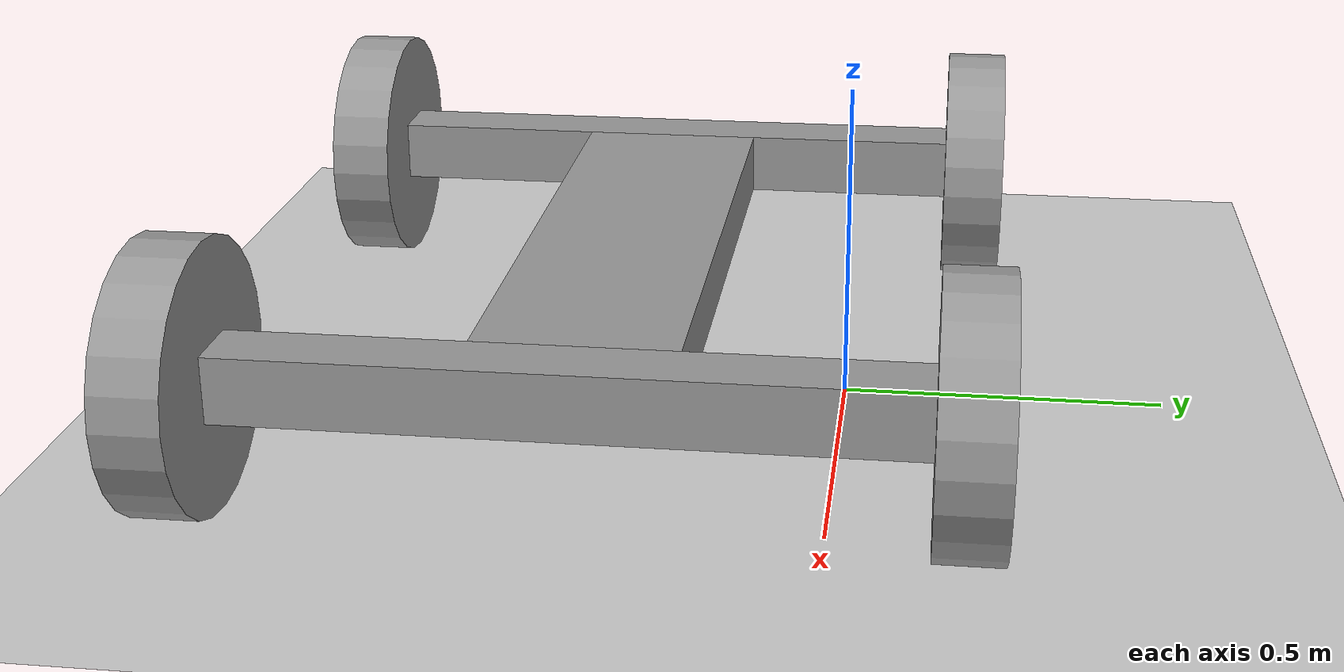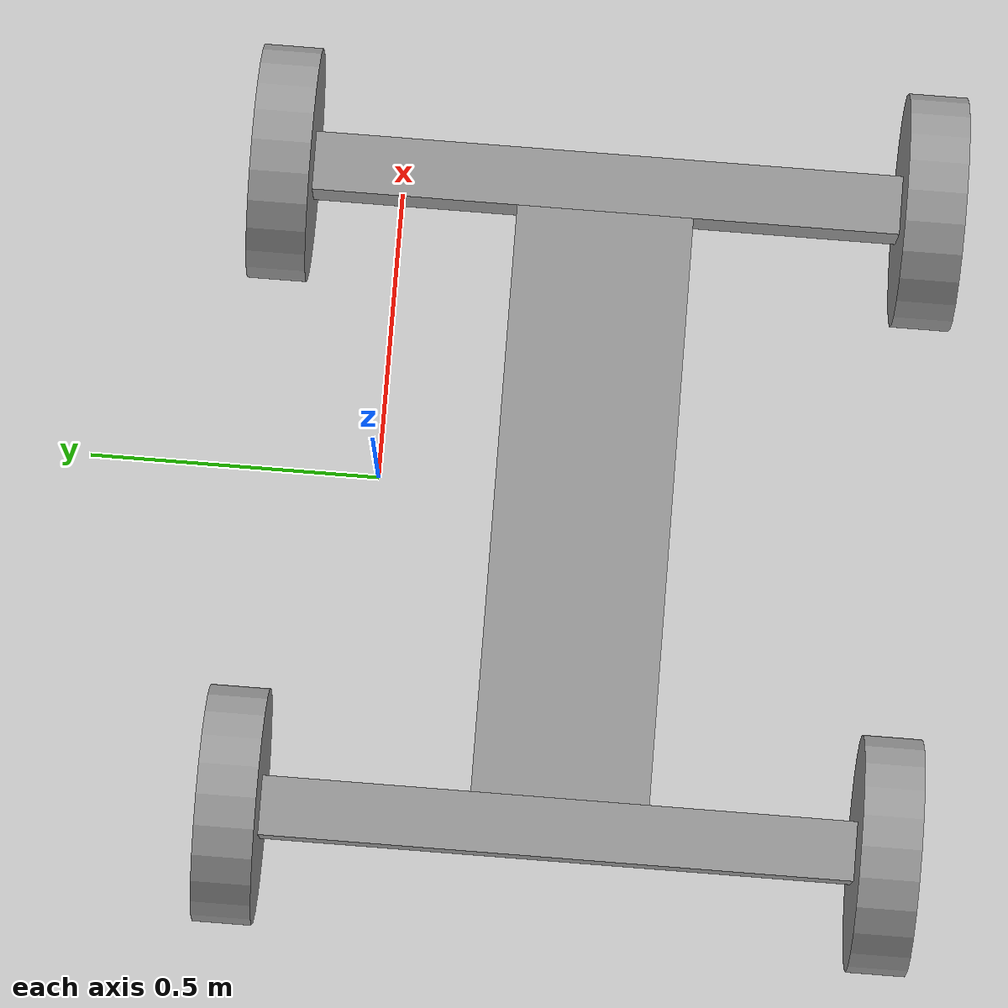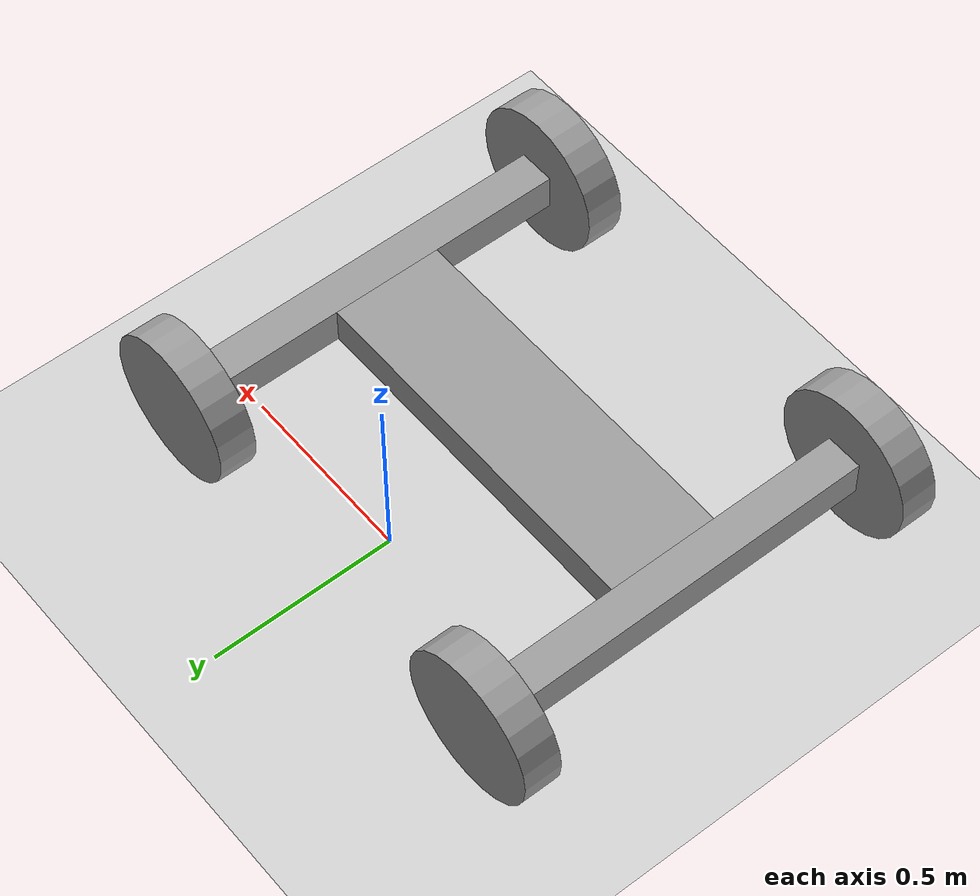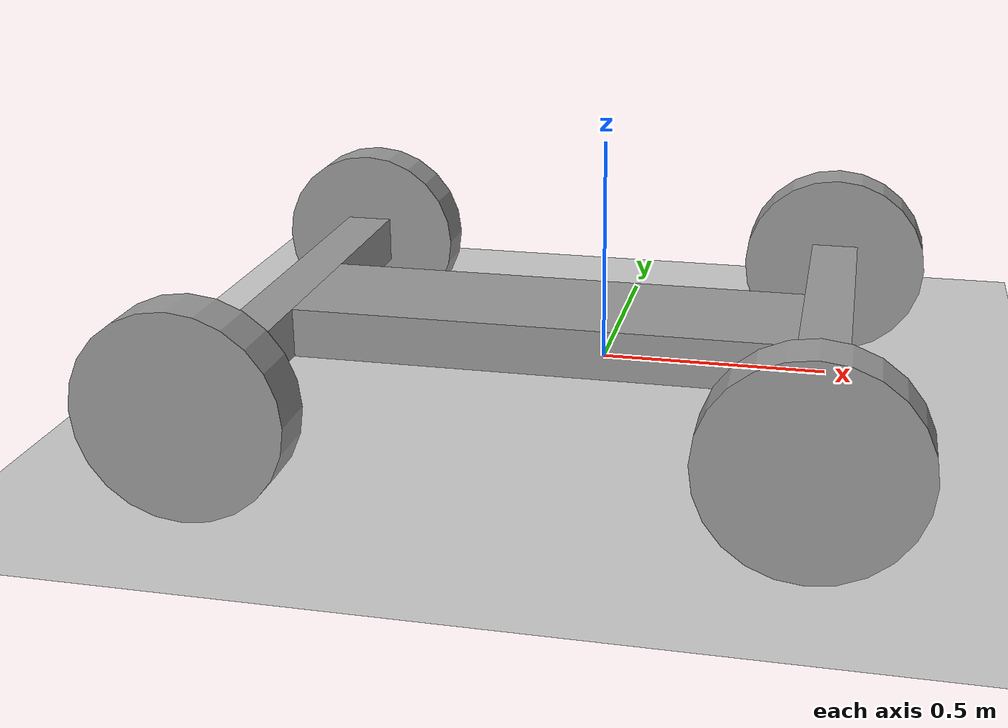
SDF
<sdf version="1.6">
 <world name="default">
  <model name="ground_plane">
   <static>1</static>
   <link name="link">
    <collision name="collision">
     <geometry><plane><normal>0 0 1</normal><size>100 100</size></plane></geometry>
     <surface>
      <contact><collide_bitmask>65535</collide_bitmask></contact>
      <friction><ode><mu>100</mu><mu2>50</mu2></ode></friction>
     </surface>
    </collision>
    <visual name="visual">
     <cast_shadows>0</cast_shadows>
     <geometry><plane><normal>0 0 1</normal><size>100 100</size></plane></geometry>
     <material>
      <script><uri>file://media/materials/scripts/gazebo.material</uri><name>Gazebo/Grey</name></script>
     </material>
    </visual>
   </link>
  </model>
  <model name="humanoid1">
   <link name="link_0">
    <inertial>
     <mass>1</mass>
     <inertia>
      <ixx>0.166667</ixx>
      <ixy>0</ixy>
      <ixz>0</ixz>
      <iyy>0.166667</iyy>
      <iyz>0</iyz>
      <izz>0.166667</izz>
     </inertia>
    </inertial>
    <pose>-0.027143 0 0 0 -0 0</pose>
    <visual name="visual">
     <geometry><box><size>1 0.3 0.1</size></box></geometry>
     <material>
      <lighting>1</lighting>
      <script><uri>file://media/materials/scripts/gazebo.material</uri><name>Gazebo/Grey</name></script>
      <shader type="pixel"><normal_map>__default__</normal_map></shader>
      <ambient>0.3 0.3 0.3 1</ambient>
      <diffuse>0.7 0.7 0.7 1</diffuse>
      <specular>0.01 0.01 0.01 1</specular>
      <emissive>0 0 0 1</emissive>
     </material>
    </visual>
    <collision name="collision">
     <geometry><box><size>1 0.3 0.1</size></box></geometry>
     <surface>
      <friction>
       <ode><mu>1</mu><mu2>1</mu2><fdir1>0 0 0</fdir1><slip1>0</slip1><slip2>0</slip2></ode>
       <torsional>
        <coefficient>1</coefficient>
        <patch_radius>0</patch_radius>
        <surface_radius>0</surface_radius>
        <use_patch_radius>1</use_patch_radius>
        <ode><slip>0</slip></ode>
       </torsional>
      </friction>
      <bounce><restitution_coefficient>0</restitution_coefficient><threshold>1e+06</threshold></bounce>
      <contact>
       <collide_without_contact>0</collide_without_contact>
       <collide_without_contact_bitmask>1</collide_without_contact_bitmask>
       <collide_bitmask>1</collide_bitmask>
       <ode>
        <soft_cfm>0</soft_cfm>
        <soft_erp>0.2</soft_erp>
        <kp>1e+13</kp>
        <kd>1</kd>
        <max_vel>0.01</max_vel>
        <min_depth>0</min_depth>
       </ode>
       <bullet>
        <split_impulse>1</split_impulse>
        <split_impulse_penetration_threshold>-0.01</split_impulse_penetration_threshold>
        <soft_cfm>0</soft_cfm>
        <soft_erp>0.2</soft_erp>
        <kp>1e+13</kp>
        <kd>1</kd>
       </bullet>
      </contact>
     </surface>
    </collision>
   </link>
   <link name="link_1_clone_clone">
    <inertial>
     <mass>1</mass>
     <inertia><ixx>0.145833</ixx><ixy>0</ixy><ixz>0</ixz><iyy>0.145833</iyy><iyz>0</iyz><izz>0.125</izz></inertia>
    </inertial>
    <pose>0.522857 -0.550019 0 1.5707 -0 0</pose>
    <visual name="visual">
     <geometry><cylinder><radius>0.2</radius><length>0.1</length></cylinder></geometry>
     <material>
      <lighting>1</lighting>
      <script><uri>file://media/materials/scripts/gazebo.material</uri><name>Gazebo/Grey</name></script>
      <shader type="pixel"><normal_map>__default__</normal_map></shader>
      <ambient>0.3 0.3 0.3 1</ambient>
      <diffuse>0.7 0.7 0.7 1</diffuse>
      <specular>0.01 0.01 0.01 1</specular>
      <emissive>0 0 0 1</emissive>
     </material>
    </visual>
    <collision name="collision">
     <geometry><cylinder><radius>0.2</radius><length>0.1</length></cylinder></geometry>
     <surface>
      <friction>
       <ode><mu>1</mu><mu2>1</mu2><fdir1>0 0 0</fdir1><slip1>0</slip1><slip2>0</slip2></ode>
       <torsional>
        <coefficient>1</coefficient>
        <patch_radius>0</patch_radius>
        <surface_radius>0</surface_radius>
        <use_patch_radius>1</use_patch_radius>
        <ode><slip>0</slip></ode>
       </torsional>
      </friction>
      <bounce><restitution_coefficient>0</restitution_coefficient><threshold>1e+06</threshold></bounce>
      <contact>
       <collide_without_contact>0</collide_without_contact>
       <collide_without_contact_bitmask>1</collide_without_contact_bitmask>
       <collide_bitmask>1</collide_bitmask>
       <ode>
        <soft_cfm>0</soft_cfm>
        <soft_erp>0.2</soft_erp>
        <kp>1e+13</kp>
        <kd>1</kd>
        <max_vel>0.01</max_vel>
        <min_depth>0</min_depth>
       </ode>
       <bullet>
        <split_impulse>1</split_impulse>
        <split_impulse_penetration_threshold>-0.01</split_impulse_penetration_threshold>
        <soft_cfm>0</soft_cfm>
        <soft_erp>0.2</soft_erp>
        <kp>1e+13</kp>
        <kd>1</kd>
       </bullet>
      </contact>
     </surface>
    </collision>
   </link>
   <link name="link_1_clone_clone_0">
    <inertial>
     <mass>1</mass>
     <inertia><ixx>0.145833</ixx><ixy>0</ixy><ixz>0</ixz><iyy>0.145833</iyy><iyz>0</iyz><izz>0.125</izz></inertia>
    </inertial>
    <pose>-0.577143 -0.550019 0 1.5707 -0 0</pose>
    <visual name="visual">
     <geometry><cylinder><radius>0.2</radius><length>0.1</length></cylinder></geometry>
     <material>
      <lighting>1</lighting>
      <script><uri>file://media/materials/scripts/gazebo.material</uri><name>Gazebo/Grey</name></script>
      <shader type="pixel"><normal_map>__default__</normal_map></shader>
      <ambient>0.3 0.3 0.3 1</ambient>
      <diffuse>0.7 0.7 0.7 1</diffuse>
      <specular>0.01 0.01 0.01 1</specular>
      <emissive>0 0 0 1</emissive>
     </material>
    </visual>
    <collision name="collision">
     <geometry><cylinder><radius>0.2</radius><length>0.1</length></cylinder></geometry>
     <surface>
      <friction>
       <ode><mu>1</mu><mu2>1</mu2><fdir1>0 0 0</fdir1><slip1>0</slip1><slip2>0</slip2></ode>
       <torsional>
        <coefficient>1</coefficient>
        <patch_radius>0</patch_radius>
        <surface_radius>0</surface_radius>
        <use_patch_radius>1</use_patch_radius>
        <ode><slip>0</slip></ode>
       </torsional>
      </friction>
      <bounce><restitution_coefficient>0</restitution_coefficient><threshold>1e+06</threshold></bounce>
      <contact>
       <collide_without_contact>0</collide_without_contact>
       <collide_without_contact_bitmask>1</collide_without_contact_bitmask>
       <collide_bitmask>1</collide_bitmask>
       <ode>
        <soft_cfm>0</soft_cfm>
        <soft_erp>0.2</soft_erp>
        <kp>1e+13</kp>
        <kd>1</kd>
        <max_vel>0.01</max_vel>
        <min_depth>0</min_depth>
       </ode>
       <bullet>
        <split_impulse>1</split_impulse>
        <split_impulse_penetration_threshold>-0.01</split_impulse_penetration_threshold>
        <soft_cfm>0</soft_cfm>
        <soft_erp>0.2</soft_erp>
        <kp>1e+13</kp>
        <kd>1</kd>
       </bullet>
      </contact>
     </surface>
    </collision>
   </link>
   <link name="link_1_clone_clone_0_clone">
    <inertial>
     <mass>1</mass>
     <inertia><ixx>0.145833</ixx><ixy>0</ixy><ixz>0</ixz><iyy>0.145833</iyy><iyz>0</iyz><izz>0.125</izz></inertia>
    </inertial>
    <pose>-0.577143 0.550019 0 1.5707 -0 0</pose>
    <visual name="visual">
     <geometry><cylinder><radius>0.2</radius><length>0.1</length></cylinder></geometry>
     <material>
      <lighting>1</lighting>
      <script><uri>file://media/materials/scripts/gazebo.material</uri><name>Gazebo/Grey</name></script>
      <shader type="pixel"><normal_map>__default__</normal_map></shader>
      <ambient>0.3 0.3 0.3 1</ambient>
      <diffuse>0.7 0.7 0.7 1</diffuse>
      <specular>0.01 0.01 0.01 1</specular>
      <emissive>0 0 0 1</emissive>
     </material>
    </visual>
    <collision name="collision">
     <geometry><cylinder><radius>0.2</radius><length>0.1</length></cylinder></geometry>
     <surface>
      <friction>
       <ode><mu>1</mu><mu2>1</mu2><fdir1>0 0 0</fdir1><slip1>0</slip1><slip2>0</slip2></ode>
       <torsional>
        <coefficient>1</coefficient>
        <patch_radius>0</patch_radius>
        <surface_radius>0</surface_radius>
        <use_patch_radius>1</use_patch_radius>
        <ode><slip>0</slip></ode>
       </torsional>
      </friction>
      <bounce><restitution_coefficient>0</restitution_coefficient><threshold>1e+06</threshold></bounce>
      <contact>
       <collide_without_contact>0</collide_without_contact>
       <collide_without_contact_bitmask>1</collide_without_contact_bitmask>
       <collide_bitmask>1</collide_bitmask>
       <ode>
        <soft_cfm>0</soft_cfm>
        <soft_erp>0.2</soft_erp>
        <kp>1e+13</kp>
        <kd>1</kd>
        <max_vel>0.01</max_vel>
        <min_depth>0</min_depth>
       </ode>
       <bullet>
        <split_impulse>1</split_impulse>
        <split_impulse_penetration_threshold>-0.01</split_impulse_penetration_threshold>
        <soft_cfm>0</soft_cfm>
        <soft_erp>0.2</soft_erp>
        <kp>1e+13</kp>
        <kd>1</kd>
       </bullet>
      </contact>
     </surface>
    </collision>
   </link>
   <link name="link_1_clone_clone_1">
    <inertial>
     <mass>1</mass>
     <inertia><ixx>0.145833</ixx><ixy>0</ixy><ixz>0</ixz><iyy>0.145833</iyy><iyz>0</iyz><izz>0.125</izz></inertia>
    </inertial>
    <pose>0.522857 0.550019 0 1.5707 -0 0</pose>
    <visual name="visual">
     <geometry><cylinder><radius>0.2</radius><length>0.1</length></cylinder></geometry>
     <material>
      <lighting>1</lighting>
      <script><uri>file://media/materials/scripts/gazebo.material</uri><name>Gazebo/Grey</name></script>
      <shader type="pixel"><normal_map>__default__</normal_map></shader>
      <ambient>0.3 0.3 0.3 1</ambient>
      <diffuse>0.7 0.7 0.7 1</diffuse>
      <specular>0.01 0.01 0.01 1</specular>
      <emissive>0 0 0 1</emissive>
     </material>
    </visual>
    <collision name="collision">
     <geometry><cylinder><radius>0.2</radius><length>0.1</length></cylinder></geometry>
     <surface>
      <friction>
       <ode><mu>1</mu><mu2>1</mu2><fdir1>0 0 0</fdir1><slip1>0</slip1><slip2>0</slip2></ode>
       <torsional>
        <coefficient>1</coefficient>
        <patch_radius>0</patch_radius>
        <surface_radius>0</surface_radius>
        <use_patch_radius>1</use_patch_radius>
        <ode><slip>0</slip></ode>
       </torsional>
      </friction>
      <bounce><restitution_coefficient>0</restitution_coefficient><threshold>1e+06</threshold></bounce>
      <contact>
       <collide_without_contact>0</collide_without_contact>
       <collide_without_contact_bitmask>1</collide_without_contact_bitmask>
       <collide_bitmask>1</collide_bitmask>
       <ode>
        <soft_cfm>0</soft_cfm>
        <soft_erp>0.2</soft_erp>
        <kp>1e+13</kp>
        <kd>1</kd>
        <max_vel>0.01</max_vel>
        <min_depth>0</min_depth>
       </ode>
       <bullet>
        <split_impulse>1</split_impulse>
        <split_impulse_penetration_threshold>-0.01</split_impulse_penetration_threshold>
        <soft_cfm>0</soft_cfm>
        <soft_erp>0.2</soft_erp>
        <kp>1e+13</kp>
        <kd>1</kd>
       </bullet>
      </contact>
     </surface>
    </collision>
   </link>
   <link name="link_3">
    <inertial>
     <mass>1</mass>
     <inertia>
      <ixx>0.166667</ixx>
      <ixy>0</ixy>
      <ixz>0</ixz>
      <iyy>0.166667</iyy>
      <iyz>0</iyz>
      <izz>0.166667</izz>
     </inertia>
    </inertial>
    <pose>-0.577143 0 0 0 -0 0</pose>
    <visual name="visual">
     <geometry><box><size>0.1 1 0.1</size></box></geometry>
     <material>
      <lighting>1</lighting>
      <script><uri>file://media/materials/scripts/gazebo.material</uri><name>Gazebo/Grey</name></script>
      <shader type="pixel"><normal_map>__default__</normal_map></shader>
      <ambient>0.3 0.3 0.3 1</ambient>
      <diffuse>0.7 0.7 0.7 1</diffuse>
      <specular>0.01 0.01 0.01 1</specular>
      <emissive>0 0 0 1</emissive>
     </material>
    </visual>
    <collision name="collision">
     <geometry><box><size>0.1 1 0.1</size></box></geometry>
     <surface>
      <friction>
       <ode><mu>1</mu><mu2>1</mu2><fdir1>0 0 0</fdir1><slip1>0</slip1><slip2>0</slip2></ode>
       <torsional>
        <coefficient>1</coefficient>
        <patch_radius>0</patch_radius>
        <surface_radius>0</surface_radius>
        <use_patch_radius>1</use_patch_radius>
        <ode><slip>0</slip></ode>
       </torsional>
      </friction>
      <bounce><restitution_coefficient>0</restitution_coefficient><threshold>1e+06</threshold></bounce>
      <contact>
       <collide_without_contact>0</collide_without_contact>
       <collide_without_contact_bitmask>1</collide_without_contact_bitmask>
       <collide_bitmask>1</collide_bitmask>
       <ode>
        <soft_cfm>0</soft_cfm>
        <soft_erp>0.2</soft_erp>
        <kp>1e+13</kp>
        <kd>1</kd>
        <max_vel>0.01</max_vel>
        <min_depth>0</min_depth>
       </ode>
       <bullet>
        <split_impulse>1</split_impulse>
        <split_impulse_penetration_threshold>-0.01</split_impulse_penetration_threshold>
        <soft_cfm>0</soft_cfm>
        <soft_erp>0.2</soft_erp>
        <kp>1e+13</kp>
        <kd>1</kd>
       </bullet>
      </contact>
     </surface>
    </collision>
   </link>
   <link name="link_3_clone">
    <inertial>
     <mass>1</mass>
     <inertia>
      <ixx>0.166667</ixx>
      <ixy>0</ixy>
      <ixz>0</ixz>
      <iyy>0.166667</iyy>
      <iyz>0</iyz>
      <izz>0.166667</izz>
     </inertia>
    </inertial>
    <pose>0.522857 0 0 0 -0 0</pose>
    <visual name="visual">
     <geometry><box><size>0.1 1 0.1</size></box></geometry>
     <material>
      <lighting>1</lighting>
      <script><uri>file://media/materials/scripts/gazebo.material</uri><name>Gazebo/Grey</name></script>
      <shader type="pixel"><normal_map>__default__</normal_map></shader>
      <ambient>0.3 0.3 0.3 1</ambient>
      <diffuse>0.7 0.7 0.7 1</diffuse>
      <specular>0.01 0.01 0.01 1</specular>
      <emissive>0 0 0 1</emissive>
     </material>
    </visual>
    <collision name="collision">
     <geometry><box><size>0.1 1 0.1</size></box></geometry>
     <surface>
      <friction>
       <ode><mu>1</mu><mu2>1</mu2><fdir1>0 0 0</fdir1><slip1>0</slip1><slip2>0</slip2></ode>
       <torsional>
        <coefficient>1</coefficient>
        <patch_radius>0</patch_radius>
        <surface_radius>0</surface_radius>
        <use_patch_radius>1</use_patch_radius>
        <ode><slip>0</slip></ode>
       </torsional>
      </friction>
      <bounce><restitution_coefficient>0</restitution_coefficient><threshold>1e+06</threshold></bounce>
      <contact>
       <collide_without_contact>0</collide_without_contact>
       <collide_without_contact_bitmask>1</collide_without_contact_bitmask>
       <collide_bitmask>1</collide_bitmask>
       <ode>
        <soft_cfm>0</soft_cfm>
        <soft_erp>0.2</soft_erp>
        <kp>1e+13</kp>
        <kd>1</kd>
        <max_vel>0.01</max_vel>
        <min_depth>0</min_depth>
       </ode>
       <bullet>
        <split_impulse>1</split_impulse>
        <split_impulse_penetration_threshold>-0.01</split_impulse_penetration_threshold>
        <soft_cfm>0</soft_cfm>
        <soft_erp>0.2</soft_erp>
        <kp>1e+13</kp>
        <kd>1</kd>
       </bullet>
      </contact>
     </surface>
    </collision>
   </link>
   <joint name="link_0_JOINT_6" type="fixed">
    <parent>link_0</parent>
    <child>link_3_clone</child>
    <physics>
     <ode><limit><cfm>0</cfm><erp>0.2</erp></limit><suspension><cfm>0</cfm><erp>0.2</erp></suspension></ode>
    </physics>
   </joint>
   <joint name="link_0_JOINT_7" type="fixed">
    <parent>link_0</parent>
    <child>link_3</child>
    <physics>
     <ode><limit><cfm>0</cfm><erp>0.2</erp></limit><suspension><cfm>0</cfm><erp>0.2</erp></suspension></ode>
    </physics>
   </joint>
   <joint name="link_3_JOINT_10" type="revolute">
    <parent>link_3</parent>
    <child>link_1_clone_clone_0</child>
    <axis>
     <xyz>1 0 0</xyz>
     <use_parent_model_frame>0</use_parent_model_frame>
     <limit>
      <lower>-1.79769e+308</lower>
      <upper>1.79769e+308</upper>
      <effort>-1</effort>
      <velocity>-1</velocity>
     </limit>
     <dynamics>
      <spring_reference>0</spring_reference>
      <spring_stiffness>0</spring_stiffness>
      <damping>0</damping>
     </dynamics>
    </axis>
    <physics>
     <ode><limit><cfm>0</cfm><erp>0.2</erp></limit><suspension><cfm>0</cfm><erp>0.2</erp></suspension></ode>
    </physics>
   </joint>
   <joint name="link_3_JOINT_9" type="revolute">
    <parent>link_3</parent>
    <child>link_1_clone_clone_0_clone</child>
    <axis>
     <xyz>1 0 0</xyz>
     <use_parent_model_frame>0</use_parent_model_frame>
     <limit>
      <lower>-1.79769e+308</lower>
      <upper>1.79769e+308</upper>
      <effort>-1</effort>
      <velocity>-1</velocity>
     </limit>
     <dynamics>
      <spring_reference>0</spring_reference>
      <spring_stiffness>0</spring_stiffness>
      <damping>0</damping>
     </dynamics>
    </axis>
    <physics>
     <ode><limit><cfm>0</cfm><erp>0.2</erp></limit><suspension><cfm>0</cfm><erp>0.2</erp></suspension></ode>
    </physics>
   </joint>
   <joint name="link_3_clone_JOINT_11" type="revolute">
    <parent>link_3_clone</parent>
    <child>link_1_clone_clone</child>
    <axis>
     <xyz>1 0 0</xyz>
     <use_parent_model_frame>0</use_parent_model_frame>
     <limit>
      <lower>-1.79769e+308</lower>
      <upper>1.79769e+308</upper>
      <effort>-1</effort>
      <velocity>-1</velocity>
     </limit>
     <dynamics>
      <spring_reference>0</spring_reference>
      <spring_stiffness>0</spring_stiffness>
      <damping>0</damping>
     </dynamics>
    </axis>
    <physics>
     <ode><limit><cfm>0</cfm><erp>0.2</erp></limit><suspension><cfm>0</cfm><erp>0.2</erp></suspension></ode>
    </physics>
   </joint>
   <joint name="link_3_clone_JOINT_12" type="revolute">
    <parent>link_3_clone</parent>
    <child>link_1_clone_clone_1</child>
    <axis>
     <xyz>1 0 0</xyz>
     <use_parent_model_frame>0</use_parent_model_frame>
     <limit>
      <lower>-1.79769e+308</lower>
      <upper>1.79769e+308</upper>
      <effort>-1</effort>
      <velocity>-1</velocity>
     </limit>
     <dynamics>
      <spring_reference>0</spring_reference>
      <spring_stiffness>0</spring_stiffness>
      <damping>0</damping>
     </dynamics>
    </axis>
    <physics>
     <ode><limit><cfm>0</cfm><erp>0.2</erp></limit><suspension><cfm>0</cfm><erp>0.2</erp></suspension></ode>
    </physics>
   </joint>
   <static>0</static>
   <pose>-0.01955 -0.353987 0.199999 3e-06 -0 0.001813</pose>
  </model>
 </world>
</sdf>
